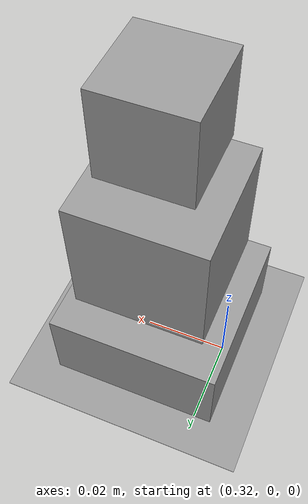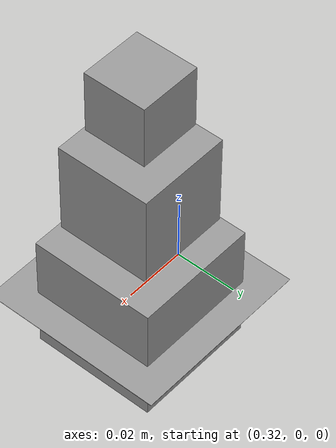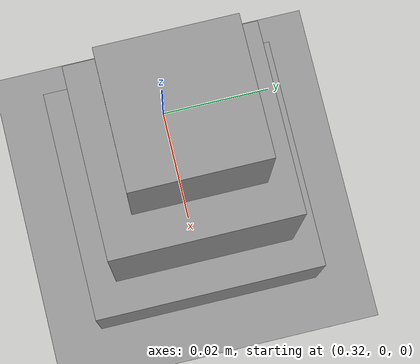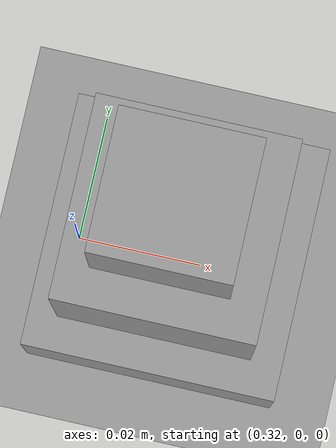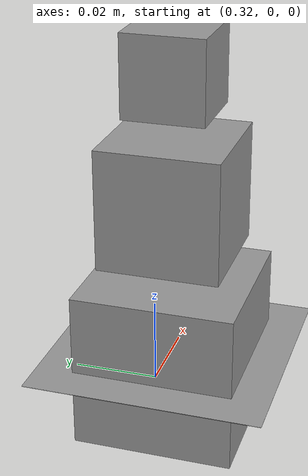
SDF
<sdf version="1.6">
 <world name="default">
  <light name="sun" type="directional">
   <pose>0 0 10 0 -0 0</pose>
   <diffuse>0.8 0.8 0.8 1</diffuse>
   <specular>0.1 0.1 0.1 1</specular>
   <attenuation>
    <range>1000</range>
    <constant>0.9</constant>
    <linear>0.01</linear>
    <quadratic>0.001</quadratic>
   </attenuation>
   <direction>-0.5 0.5 -1</direction>
  </light>
  <model name="ground_plane">
   <static>1</static>
   <link name="link">
    <collision name="collision">
     <geometry><plane><normal>0 0 1</normal><size>100 100</size></plane></geometry>
     <surface><friction><ode><mu>100</mu><mu2>50</mu2><kp>1e+100</kp><kd>1e-100</kd></ode></friction></surface>
    </collision>
    <visual name="visual">
     <cast_shadows>0</cast_shadows>
     <geometry><plane><normal>0 0 1</normal><size>100 100</size></plane></geometry>
     <material>
      <script><uri>file://media/materials/scripts/gazebo.material</uri><name>Gazebo/Grey</name></script>
     </material>
    </visual>
   </link>
  </model>
  <gravity>0 0 -9.8</gravity>
  <magnetic_field>6e-06 2.3e-05 -4.2e-05</magnetic_field>
  <atmosphere type="adiabatic"/>
  <physics name="default_physics" default="0" type="ode">
   <max_step_size>0.001</max_step_size>
   <real_time_factor>1</real_time_factor>
   <real_time_update_rate>1000</real_time_update_rate>
  </physics>
  <scene><ambient>0.4 0.4 0.4 1</ambient><background>0.7 0.7 0.7 1</background><shadows>1</shadows></scene>
  <spherical_coordinates>
   <surface_model>EARTH_WGS84</surface_model>
   <latitude_deg>0</latitude_deg>
   <longitude_deg>0</longitude_deg>
   <elevation>0</elevation>
   <heading_deg>0</heading_deg>
  </spherical_coordinates>
  <model name="ground2">
   <link name="link_0">
    <inertial>
     <mass>0.0001</mass>
     <inertia><ixx>0.145833</ixx><ixy>0</ixy><ixz>0</ixz><iyy>0.145833</iyy><iyz>0</iyz><izz>0.125</izz></inertia>
    </inertial>
    <visual name="visual">
     <geometry><box><size>4 4 0.00001</size></box></geometry>
     <material>
      <lighting>1</lighting>
      <script><uri>file://media/materials/scripts/gazebo.material</uri><name>Gazebo/Grey</name></script>
     </material>
    </visual>
    <collision name="collision">
     <geometry><box><size>4 4 0.00001</size></box></geometry>
     <surface>
      <friction>
       <ode><mu>100</mu><mu2>100</mu2><fdir1>0 0 0</fdir1><slip1>0</slip1><slip2>0</slip2></ode>
       <torsional>
        <coefficient>1</coefficient>
        <patch_radius>0</patch_radius>
        <surface_radius>0</surface_radius>
        <use_patch_radius>1</use_patch_radius>
        <ode><slip>0</slip></ode>
       </torsional>
      </friction>
      <bounce><restitution_coefficient>0</restitution_coefficient><threshold>1e+06</threshold></bounce>
      <contact>
       <collide_without_contact>0</collide_without_contact>
       <collide_without_contact_bitmask>1</collide_without_contact_bitmask>
       <collide_bitmask>1</collide_bitmask>
       <ode>
        <soft_cfm>0</soft_cfm>
        <soft_erp>0.2</soft_erp>
        <kp>1e+100</kp>
        <kd>1e-100</kd>
        <max_vel>0.01</max_vel>
        <min_depth>0</min_depth>
       </ode>
       <bullet>
        <split_impulse>1</split_impulse>
        <split_impulse_penetration_threshold>-0.01</split_impulse_penetration_threshold>
        <soft_cfm>0</soft_cfm>
        <soft_erp>0.2</soft_erp>
        <kp>1e+100</kp>
        <kd>1e-100</kd>
       </bullet>
      </contact>
     </surface>
    </collision>
   </link>
   <static>0</static>
   <pose>0 0 0.000005 0 0 0</pose>
  </model>
  <model name="tower0">
   <link name="link_0">
    <inertial>
     <mass>0.0001</mass>
     <inertia><ixx>0.145833</ixx><ixy>0</ixy><ixz>0</ixz><iyy>0.145833</iyy><iyz>0</iyz><izz>0.125</izz></inertia>
    </inertial>
    <visual name="visual">
     <geometry><box><size>0.04 0.04 0.04</size></box></geometry>
     <material>
      <lighting>1</lighting>
      <script><uri>file://media/materials/scripts/gazebo.material</uri><name>Gazebo/Grey</name></script>
     </material>
    </visual>
    <collision name="collision">
     <geometry><box><size>0.04 0.04 0.04</size></box></geometry>
     <surface>
      <friction>
       <ode><mu>100</mu><mu2>100</mu2><fdir1>0 0 0</fdir1><slip1>0</slip1><slip2>0</slip2></ode>
       <torsional>
        <coefficient>1</coefficient>
        <patch_radius>0</patch_radius>
        <surface_radius>0</surface_radius>
        <use_patch_radius>1</use_patch_radius>
        <ode><slip>0</slip></ode>
       </torsional>
      </friction>
      <bounce><restitution_coefficient>0</restitution_coefficient><threshold>1e+06</threshold></bounce>
      <contact>
       <collide_without_contact>0</collide_without_contact>
       <collide_without_contact_bitmask>1</collide_without_contact_bitmask>
       <collide_bitmask>1</collide_bitmask>
       <ode>
        <soft_cfm>0</soft_cfm>
        <soft_erp>0.2</soft_erp>
        <kp>1e+100</kp>
        <kd>1e-100</kd>
        <max_vel>0.01</max_vel>
        <min_depth>0</min_depth>
       </ode>
       <bullet>
        <split_impulse>1</split_impulse>
        <split_impulse_penetration_threshold>-0.01</split_impulse_penetration_threshold>
        <soft_cfm>0</soft_cfm>
        <soft_erp>0.2</soft_erp>
        <kp>1e+100</kp>
        <kd>1e-100</kd>
       </bullet>
      </contact>
     </surface>
    </collision>
   </link>
   <static>0</static>
   <pose>0.336 0 0.0001 0 0 0</pose>
  </model>
  <model name="tower1">
   <link name="link_0">
    <inertial>
     <mass>0.0001</mass>
     <inertia><ixx>0.145833</ixx><ixy>0</ixy><ixz>0</ixz><iyy>0.145833</iyy><iyz>0</iyz><izz>0.125</izz></inertia>
    </inertial>
    <visual name="visual">
     <geometry><box><size>0.03 0.03 0.03</size></box></geometry>
     <material>
      <lighting>1</lighting>
      <script><uri>file://media/materials/scripts/gazebo.material</uri><name>Gazebo/Grey</name></script>
     </material>
    </visual>
    <collision name="collision">
     <geometry><box><size>0.03 0.03 0.03</size></box></geometry>
     <surface>
      <friction>
       <ode><mu>100</mu><mu2>100</mu2><fdir1>0 0 0</fdir1><slip1>0</slip1><slip2>0</slip2></ode>
       <torsional>
        <coefficient>1</coefficient>
        <patch_radius>0</patch_radius>
        <surface_radius>0</surface_radius>
        <use_patch_radius>1</use_patch_radius>
        <ode><slip>0</slip></ode>
       </torsional>
      </friction>
      <bounce><restitution_coefficient>0</restitution_coefficient><threshold>1e+06</threshold></bounce>
      <contact>
       <collide_without_contact>0</collide_without_contact>
       <collide_without_contact_bitmask>1</collide_without_contact_bitmask>
       <collide_bitmask>1</collide_bitmask>
       <ode>
        <soft_cfm>0</soft_cfm>
        <soft_erp>0.2</soft_erp>
        <kp>1e+100</kp>
        <kd>1e-100</kd>
        <max_vel>0.01</max_vel>
        <min_depth>0</min_depth>
       </ode>
       <bullet>
        <split_impulse>1</split_impulse>
        <split_impulse_penetration_threshold>-0.01</split_impulse_penetration_threshold>
        <soft_cfm>0</soft_cfm>
        <soft_erp>0.2</soft_erp>
        <kp>1e+100</kp>
        <kd>1e-100</kd>
       </bullet>
      </contact>
     </surface>
    </collision>
   </link>
   <static>0</static>
   <pose>0.336 0 0.0412 0 0 0</pose>
  </model>
  <model name="tower2">
   <link name="link_0">
    <inertial>
     <mass>0.0001</mass>
     <inertia><ixx>0.145833</ixx><ixy>0</ixy><ixz>0</ixz><iyy>0.145833</iyy><iyz>0</iyz><izz>0.125</izz></inertia>
    </inertial>
    <visual name="visual">
     <geometry><box><size>0.02 0.02 0.02</size></box></geometry>
     <material>
      <lighting>1</lighting>
      <script><uri>file://media/materials/scripts/gazebo.material</uri><name>Gazebo/Grey</name></script>
     </material>
    </visual>
    <collision name="collision">
     <geometry><box><size>0.02 0.02 0.02</size></box></geometry>
     <surface>
      <friction>
       <ode><mu>100</mu><mu2>100</mu2><fdir1>0 0 0</fdir1><slip1>0</slip1><slip2>0</slip2></ode>
       <torsional>
        <coefficient>1</coefficient>
        <patch_radius>0</patch_radius>
        <surface_radius>0</surface_radius>
        <use_patch_radius>1</use_patch_radius>
        <ode><slip>0</slip></ode>
       </torsional>
      </friction>
      <bounce><restitution_coefficient>0</restitution_coefficient><threshold>1e+06</threshold></bounce>
      <contact>
       <collide_without_contact>0</collide_without_contact>
       <collide_without_contact_bitmask>1</collide_without_contact_bitmask>
       <collide_bitmask>1</collide_bitmask>
       <ode>
        <soft_cfm>0</soft_cfm>
        <soft_erp>0.2</soft_erp>
        <kp>1e+100</kp>
        <kd>1e-100</kd>
        <max_vel>0.01</max_vel>
        <min_depth>0</min_depth>
       </ode>
       <bullet>
        <split_impulse>1</split_impulse>
        <split_impulse_penetration_threshold>-0.01</split_impulse_penetration_threshold>
        <soft_cfm>0</soft_cfm>
        <soft_erp>0.2</soft_erp>
        <kp>1e+100</kp>
        <kd>1e-100</kd>
       </bullet>
      </contact>
     </surface>
    </collision>
   </link>
   <static>0</static>
   <pose>0.336 0 0.0723 0 0 0</pose>
  </model>
 </world>
</sdf>
